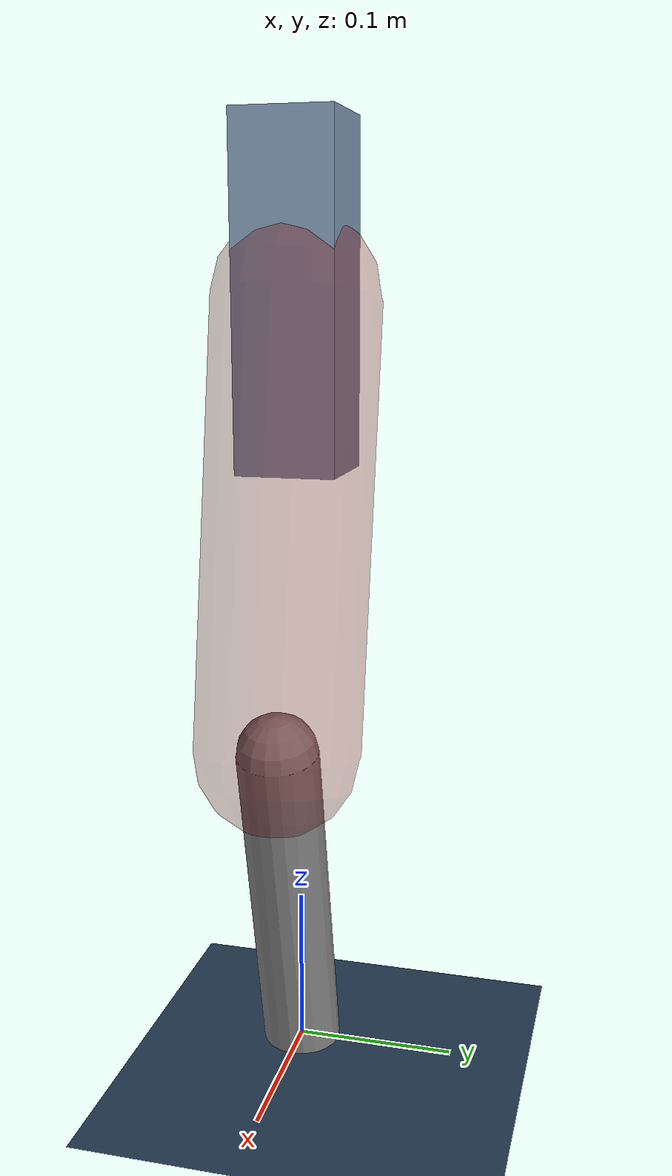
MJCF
<mujoco model="Hopper2D">
	<compiler inertiafromgeom="true" angle="radian" />
	<option timestep="0.001" integrator="implicit" cone="elliptic" solver="Newton" tolerance="1e-10" />

	<default>
		<geom contype="1" conaffinity="1" condim="3" friction="2 0.005 0.0001" solref="0.005 1" />
		<joint limited="true" damping="0.1" />
	</default>

	<asset>
		<texture name="skybox" type="skybox" builtin="gradient" rgb1=".4 .6 .8" rgb2="0 0 0" width="800" height="800" />
		<texture name="grid" type="2d" builtin="checker" rgb1=".1 .2 .3" rgb2=".2 .3 .4" width="300" height="300" mark="edge" markrgb=".2 .3 .4" />
		<material name="ground" texture="grid" texrepeat="1 1" texuniform="true" reflectance="0.1" />
		<material name="leg" rgba="0.5 0.6 0.7 1" />
	</asset>

	<worldbody>

		<geom name="floor" type="plane" size="5 5 0.25" material="ground" />

		<light directional="false" diffuse="0.8 0.8 0.8" specular="0.3 0.3 0.3" pos="0 0 2" dir="0 0 -1" />
		<light mode="targetbodycom" target="base" directional="false" diffuse="0.8 0.8 0.8" specular="0.3 0.3 0.3" pos="0 0 2" dir="0 0 -1" />

		<camera name="fixed" pos="0 -2 1" xyaxes="1 0 0 0 0 1" />
		<camera name="tracking" mode="trackcom" pos="0 -3 1" />

		<body name="root" pos="0 0 0.4780995698025269">
			<joint name="slide_x" type="slide" axis="1 0 0" range="-100 100" />
			<joint name="slide_z" type="slide" axis="0 0 1" range="0 10" />

			<body name="base" pos="0 0 0">
				<geom name="torso" type="box" size="0.03 0.03 0.1" mass="1.979" material="leg" />

				<body name="link1" pos="0 0 0" euler="0 1.3858131946935308 0">
					<joint type="hinge" axis="0 -1 0" pos="0 0 0" name="hinge1" limited="true" range="-3.14 3.14" stiffness="0" damping="0.1" />
					<geom name="thigh" type="capsule" fromto="0 0 0 0.26607252028619244 0 0" size="0.05" rgba="0.5 0 0 0.3" mass="0.8982958047727195" />

					<body name="link2" pos="0.26607252028619244 0 0" euler="0 0.40722588177234775 0">
						<joint type="hinge" axis="0 -1 0" pos="0 0 0" name="hinge2" limited="true" range="-3.14 3.14" stiffness="0" damping="0.1" />
						<geom name="shank" type="capsule" fromto="0 0 0 0.22202704951633442 0 0" size="0.025" mass="0.41932434456470097" />

					</body>
				</body>
			</body>
		</body>
	</worldbody>

	<actuator>
		<motor name="torque1" joint="hinge1" ctrlrange="-58.49099243996524 58.49099243996524" ctrllimited="true" gear="1" />
		<motor name="torque2" joint="hinge2" ctrlrange="-103.50423623318358 103.50423623318358" ctrllimited="true" gear="1" />
	</actuator>
</mujoco>
